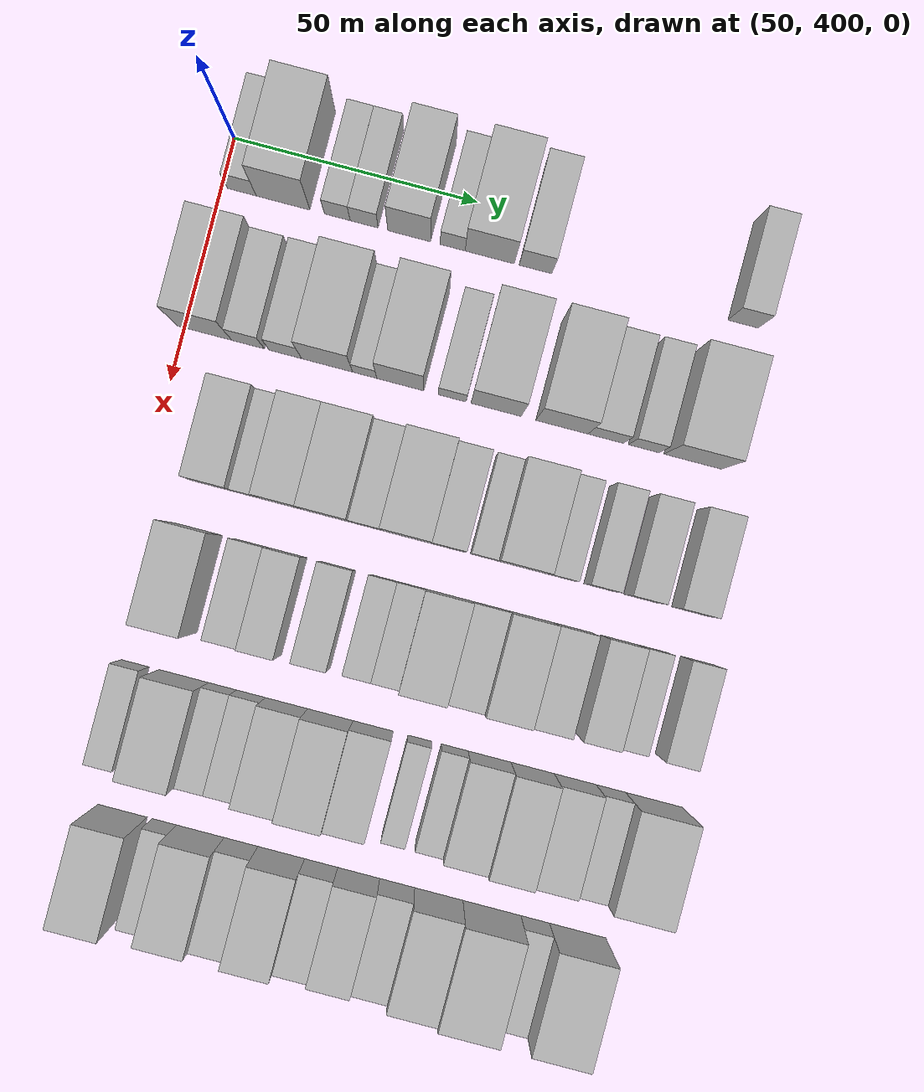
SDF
<sdf version="1.6">
 <world name="default">
  <model name="building_97">
   <static>1</static>
   <pose>50.0000 404.2038 0 0.000000 0.000000 0.000000</pose>
   <link name="link">
    <pose>0 0 6.00 0 0 0</pose>
    <collision name="collision"><geometry><box><size>20.0000 5.8761 12.0000</size></box></geometry></collision>
    <visual name="visual">
     <cast_shadows>0</cast_shadows>
     <geometry><box><size>20.0000 5.8761 12.0000</size></box></geometry>
     <material>
      <script>
       <uri>model://HANNAS_wall/materials/scripts</uri>
       <uri>model://HANNAS_wall/materials/textures</uri>
       <name>vrc/HANNAS_wall</name>
      </script>
     </material>
    </visual>
   </link>
  </model>
  <model name="building_98">
   <static>1</static>
   <pose>50.0000 412.6439 0 0.000000 0.000000 0.000000</pose>
   <link name="link">
    <pose>0 0 12.00 0 0 0</pose>
    <collision name="collision"><geometry><box><size>20.0000 11.0041 24.0000</size></box></geometry></collision>
    <visual name="visual">
     <cast_shadows>0</cast_shadows>
     <geometry><box><size>20.0000 11.0041 24.0000</size></box></geometry>
     <material>
      <script>
       <uri>model://HANNAS_wall/materials/scripts</uri>
       <uri>model://HANNAS_wall/materials/textures</uri>
       <name>vrc/HANNAS_wall</name>
      </script>
     </material>
    </visual>
   </link>
  </model>
  <model name="building_99">
   <static>1</static>
   <pose>50.0000 423.7917 0 0.000000 0.000000 0.000000</pose>
   <link name="link">
    <pose>0 0 6.00 0 0 0</pose>
    <collision name="collision"><geometry><box><size>20.0000 5.2915 12.0000</size></box></geometry></collision>
    <visual name="visual">
     <cast_shadows>0</cast_shadows>
     <geometry><box><size>20.0000 5.2915 12.0000</size></box></geometry>
     <material>
      <script>
       <uri>model://HANNAS_wall/materials/scripts</uri>
       <uri>model://HANNAS_wall/materials/textures</uri>
       <name>vrc/HANNAS_wall</name>
      </script>
     </material>
    </visual>
   </link>
  </model>
  <model name="building_100">
   <static>1</static>
   <pose>50.0000 429.3058 0 0.000000 0.000000 0.000000</pose>
   <link name="link">
    <pose>0 0 6.00 0 0 0</pose>
    <collision name="collision"><geometry><box><size>20.0000 5.7365 12.0000</size></box></geometry></collision>
    <visual name="visual">
     <cast_shadows>0</cast_shadows>
     <geometry><box><size>20.0000 5.7365 12.0000</size></box></geometry>
     <material>
      <script>
       <uri>model://HANNAS_wall/materials/scripts</uri>
       <uri>model://HANNAS_wall/materials/textures</uri>
       <name>vrc/HANNAS_wall</name>
      </script>
     </material>
    </visual>
   </link>
  </model>
  <model name="building_101">
   <static>1</static>
   <pose>50.0000 438.5606 0 0.000000 0.000000 0.000000</pose>
   <link name="link">
    <pose>0 0 10.50 0 0 0</pose>
    <collision name="collision"><geometry><box><size>20.0000 8.7731 21.0000</size></box></geometry></collision>
    <visual name="visual">
     <cast_shadows>0</cast_shadows>
     <geometry><box><size>20.0000 8.7731 21.0000</size></box></geometry>
     <material>
      <script>
       <uri>model://HANNAS_wall/materials/scripts</uri>
       <uri>model://HANNAS_wall/materials/textures</uri>
       <name>vrc/HANNAS_wall</name>
      </script>
     </material>
    </visual>
   </link>
  </model>
  <model name="building_102">
   <static>1</static>
   <pose>50.0000 447.5078 0 0.000000 0.000000 0.000000</pose>
   <link name="link">
    <pose>0 0 6.00 0 0 0</pose>
    <collision name="collision"><geometry><box><size>20.0000 5.1212 12.0000</size></box></geometry></collision>
    <visual name="visual">
     <cast_shadows>0</cast_shadows>
     <geometry><box><size>20.0000 5.1212 12.0000</size></box></geometry>
     <material>
      <script>
       <uri>model://HANNAS_wall/materials/scripts</uri>
       <uri>model://HANNAS_wall/materials/textures</uri>
       <name>vrc/HANNAS_wall</name>
      </script>
     </material>
    </visual>
   </link>
  </model>
  <model name="building_103">
   <static>1</static>
   <pose>50.0000 455.1104 0 0.000000 0.000000 0.000000</pose>
   <link name="link">
    <pose>0 0 10.50 0 0 0</pose>
    <collision name="collision"><geometry><box><size>20.0000 10.0841 21.0000</size></box></geometry></collision>
    <visual name="visual">
     <cast_shadows>0</cast_shadows>
     <geometry><box><size>20.0000 10.0841 21.0000</size></box></geometry>
     <material>
      <script>
       <uri>model://HANNAS_wall/materials/scripts</uri>
       <uri>model://HANNAS_wall/materials/textures</uri>
       <name>vrc/HANNAS_wall</name>
      </script>
     </material>
    </visual>
   </link>
  </model>
  <model name="building_104">
   <static>1</static>
   <pose>50.0000 464.5043 0 0.000000 0.000000 0.000000</pose>
   <link name="link">
    <pose>0 0 7.50 0 0 0</pose>
    <collision name="collision"><geometry><box><size>20.0000 6.7036 15.0000</size></box></geometry></collision>
    <visual name="visual">
     <cast_shadows>0</cast_shadows>
     <geometry><box><size>20.0000 6.7036 15.0000</size></box></geometry>
     <material>
      <script>
       <uri>model://HANNAS_wall/materials/scripts</uri>
       <uri>model://HANNAS_wall/materials/textures</uri>
       <name>vrc/HANNAS_wall</name>
      </script>
     </material>
    </visual>
   </link>
  </model>
  <model name="building_105">
   <static>1</static>
   <pose>50.0000 507.2167 0 0.000000 0.000000 0.000000</pose>
   <link name="link">
    <pose>0 0 7.50 0 0 0</pose>
    <collision name="collision"><geometry><box><size>20.0000 6.2405 15.0000</size></box></geometry></collision>
    <visual name="visual">
     <cast_shadows>0</cast_shadows>
     <geometry><box><size>20.0000 6.2405 15.0000</size></box></geometry>
     <material>
      <script>
       <uri>model://HANNAS_wall/materials/scripts</uri>
       <uri>model://HANNAS_wall/materials/textures</uri>
       <name>vrc/HANNAS_wall</name>
      </script>
     </material>
    </visual>
   </link>
  </model>
  <model name="building_208">
   <static>1</static>
   <pose>79.0000 404.2080 0 0.000000 0.000000 0.000000</pose>
   <link name="link">
    <pose>0 0 12.00 0 0 0</pose>
    <collision name="collision"><geometry><box><size>20.0000 11.1796 24.0000</size></box></geometry></collision>
    <visual name="visual">
     <cast_shadows>0</cast_shadows>
     <geometry><box><size>20.0000 11.1796 24.0000</size></box></geometry>
     <material>
      <script>
       <uri>model://HANNAS_wall/materials/scripts</uri>
       <uri>model://HANNAS_wall/materials/textures</uri>
       <name>vrc/HANNAS_wall</name>
      </script>
     </material>
    </visual>
   </link>
  </model>
  <model name="building_209">
   <static>1</static>
   <pose>79.0000 413.1258 0 0.000000 0.000000 0.000000</pose>
   <link name="link">
    <pose>0 0 7.50 0 0 0</pose>
    <collision name="collision"><geometry><box><size>20.0000 6.6559 15.0000</size></box></geometry></collision>
    <visual name="visual">
     <cast_shadows>0</cast_shadows>
     <geometry><box><size>20.0000 6.6559 15.0000</size></box></geometry>
     <material>
      <script>
       <uri>model://HANNAS_wall/materials/scripts</uri>
       <uri>model://HANNAS_wall/materials/textures</uri>
       <name>vrc/HANNAS_wall</name>
      </script>
     </material>
    </visual>
   </link>
  </model>
  <model name="building_210">
   <static>1</static>
   <pose>79.0000 420.7905 0 0.000000 0.000000 0.000000</pose>
   <link name="link">
    <pose>0 0 7.50 0 0 0</pose>
    <collision name="collision"><geometry><box><size>20.0000 6.6735 15.0000</size></box></geometry></collision>
    <visual name="visual">
     <cast_shadows>0</cast_shadows>
     <geometry><box><size>20.0000 6.6735 15.0000</size></box></geometry>
     <material>
      <script>
       <uri>model://HANNAS_wall/materials/scripts</uri>
       <uri>model://HANNAS_wall/materials/textures</uri>
       <name>vrc/HANNAS_wall</name>
      </script>
     </material>
    </visual>
   </link>
  </model>
  <model name="building_211">
   <static>1</static>
   <pose>79.0000 429.3721 0 0.000000 0.000000 0.000000</pose>
   <link name="link">
    <pose>0 0 12.00 0 0 0</pose>
    <collision name="collision"><geometry><box><size>20.0000 10.4898 24.0000</size></box></geometry></collision>
    <visual name="visual">
     <cast_shadows>0</cast_shadows>
     <geometry><box><size>20.0000 10.4898 24.0000</size></box></geometry>
     <material>
      <script>
       <uri>model://HANNAS_wall/materials/scripts</uri>
       <uri>model://HANNAS_wall/materials/textures</uri>
       <name>vrc/HANNAS_wall</name>
      </script>
     </material>
    </visual>
   </link>
  </model>
  <model name="building_212">
   <static>1</static>
   <pose>79.0000 437.0932 0 0.000000 0.000000 0.000000</pose>
   <link name="link">
    <pose>0 0 6.00 0 0 0</pose>
    <collision name="collision"><geometry><box><size>20.0000 4.9523 12.0000</size></box></geometry></collision>
    <visual name="visual">
     <cast_shadows>0</cast_shadows>
     <geometry><box><size>20.0000 4.9523 12.0000</size></box></geometry>
     <material>
      <script>
       <uri>model://HANNAS_wall/materials/scripts</uri>
       <uri>model://HANNAS_wall/materials/textures</uri>
       <name>vrc/HANNAS_wall</name>
      </script>
     </material>
    </visual>
   </link>
  </model>
  <model name="building_213">
   <static>1</static>
   <pose>79.0000 444.3851 0 0.000000 0.000000 0.000000</pose>
   <link name="link">
    <pose>0 0 12.00 0 0 0</pose>
    <collision name="collision"><geometry><box><size>20.0000 9.6316 24.0000</size></box></geometry></collision>
    <visual name="visual">
     <cast_shadows>0</cast_shadows>
     <geometry><box><size>20.0000 9.6316 24.0000</size></box></geometry>
     <material>
      <script>
       <uri>model://HANNAS_wall/materials/scripts</uri>
       <uri>model://HANNAS_wall/materials/textures</uri>
       <name>vrc/HANNAS_wall</name>
      </script>
     </material>
    </visual>
   </link>
  </model>
  <model name="building_214">
   <static>1</static>
   <pose>79.0000 455.0488 0 0.000000 0.000000 0.000000</pose>
   <link name="link">
    <pose>0 0 6.00 0 0 0</pose>
    <collision name="collision"><geometry><box><size>20.0000 5.6956 12.0000</size></box></geometry></collision>
    <visual name="visual">
     <cast_shadows>0</cast_shadows>
     <geometry><box><size>20.0000 5.6956 12.0000</size></box></geometry>
     <material>
      <script>
       <uri>model://HANNAS_wall/materials/scripts</uri>
       <uri>model://HANNAS_wall/materials/textures</uri>
       <name>vrc/HANNAS_wall</name>
      </script>
     </material>
    </visual>
   </link>
  </model>
  <model name="building_215">
   <static>1</static>
   <pose>79.0000 464.0540 0 0.000000 0.000000 0.000000</pose>
   <link name="link">
    <pose>0 0 12.00 0 0 0</pose>
    <collision name="collision"><geometry><box><size>20.0000 10.3149 24.0000</size></box></geometry></collision>
    <visual name="visual">
     <cast_shadows>0</cast_shadows>
     <geometry><box><size>20.0000 10.3149 24.0000</size></box></geometry>
     <material>
      <script>
       <uri>model://HANNAS_wall/materials/scripts</uri>
       <uri>model://HANNAS_wall/materials/textures</uri>
       <name>vrc/HANNAS_wall</name>
      </script>
     </material>
    </visual>
   </link>
  </model>
  <model name="building_216">
   <static>1</static>
   <pose>79.0000 477.5877 0 0.000000 0.000000 0.000000</pose>
   <link name="link">
    <pose>0 0 12.00 0 0 0</pose>
    <collision name="collision"><geometry><box><size>20.0000 10.7525 24.0000</size></box></geometry></collision>
    <visual name="visual">
     <cast_shadows>0</cast_shadows>
     <geometry><box><size>20.0000 10.7525 24.0000</size></box></geometry>
     <material>
      <script>
       <uri>model://HANNAS_wall/materials/scripts</uri>
       <uri>model://HANNAS_wall/materials/textures</uri>
       <name>vrc/HANNAS_wall</name>
      </script>
     </material>
    </visual>
   </link>
  </model>
  <model name="building_217">
   <static>1</static>
   <pose>79.0000 486.6097 0 0.000000 0.000000 0.000000</pose>
   <link name="link">
    <pose>0 0 7.50 0 0 0</pose>
    <collision name="collision"><geometry><box><size>20.0000 7.2914 15.0000</size></box></geometry></collision>
    <visual name="visual">
     <cast_shadows>0</cast_shadows>
     <geometry><box><size>20.0000 7.2914 15.0000</size></box></geometry>
     <material>
      <script>
       <uri>model://HANNAS_wall/materials/scripts</uri>
       <uri>model://HANNAS_wall/materials/textures</uri>
       <name>vrc/HANNAS_wall</name>
      </script>
     </material>
    </visual>
   </link>
  </model>
  <model name="building_218">
   <static>1</static>
   <pose>79.0000 494.3957 0 0.000000 0.000000 0.000000</pose>
   <link name="link">
    <pose>0 0 7.50 0 0 0</pose>
    <collision name="collision"><geometry><box><size>20.0000 6.2807 15.0000</size></box></geometry></collision>
    <visual name="visual">
     <cast_shadows>0</cast_shadows>
     <geometry><box><size>20.0000 6.2807 15.0000</size></box></geometry>
     <material>
      <script>
       <uri>model://HANNAS_wall/materials/scripts</uri>
       <uri>model://HANNAS_wall/materials/textures</uri>
       <name>vrc/HANNAS_wall</name>
      </script>
     </material>
    </visual>
   </link>
  </model>
  <model name="building_219">
   <static>1</static>
   <pose>79.0000 504.4494 0 0.000000 0.000000 0.000000</pose>
   <link name="link">
    <pose>0 0 12.00 0 0 0</pose>
    <collision name="collision"><geometry><box><size>20.0000 11.8266 24.0000</size></box></geometry></collision>
    <visual name="visual">
     <cast_shadows>0</cast_shadows>
     <geometry><box><size>20.0000 11.8266 24.0000</size></box></geometry>
     <material>
      <script>
       <uri>model://HANNAS_wall/materials/scripts</uri>
       <uri>model://HANNAS_wall/materials/textures</uri>
       <name>vrc/HANNAS_wall</name>
      </script>
     </material>
    </visual>
   </link>
  </model>
  <model name="building_323">
   <static>1</static>
   <pose>108.0000 413.7590 0 0.000000 0.000000 0.000000</pose>
   <link name="link">
    <pose>0 0 9.00 0 0 0</pose>
    <collision name="collision"><geometry><box><size>20.0000 8.7634 18.0000</size></box></geometry></collision>
    <visual name="visual">
     <cast_shadows>0</cast_shadows>
     <geometry><box><size>20.0000 8.7634 18.0000</size></box></geometry>
     <material>
      <script>
       <uri>model://HANNAS_wall/materials/scripts</uri>
       <uri>model://HANNAS_wall/materials/textures</uri>
       <name>vrc/HANNAS_wall</name>
      </script>
     </material>
    </visual>
   </link>
  </model>
  <model name="building_324">
   <static>1</static>
   <pose>108.0000 420.7396 0 0.000000 0.000000 0.000000</pose>
   <link name="link">
    <pose>0 0 6.00 0 0 0</pose>
    <collision name="collision"><geometry><box><size>20.0000 5.1978 12.0000</size></box></geometry></collision>
    <visual name="visual">
     <cast_shadows>0</cast_shadows>
     <geometry><box><size>20.0000 5.1978 12.0000</size></box></geometry>
     <material>
      <script>
       <uri>model://HANNAS_wall/materials/scripts</uri>
       <uri>model://HANNAS_wall/materials/textures</uri>
       <name>vrc/HANNAS_wall</name>
      </script>
     </material>
    </visual>
   </link>
  </model>
  <model name="building_325">
   <static>1</static>
   <pose>108.0000 427.6355 0 0.000000 0.000000 0.000000</pose>
   <link name="link">
    <pose>0 0 10.50 0 0 0</pose>
    <collision name="collision"><geometry><box><size>20.0000 8.5941 21.0000</size></box></geometry></collision>
    <visual name="visual">
     <cast_shadows>0</cast_shadows>
     <geometry><box><size>20.0000 8.5941 21.0000</size></box></geometry>
     <material>
      <script>
       <uri>model://HANNAS_wall/materials/scripts</uri>
       <uri>model://HANNAS_wall/materials/textures</uri>
       <name>vrc/HANNAS_wall</name>
      </script>
     </material>
    </visual>
   </link>
  </model>
  <model name="building_326">
   <static>1</static>
   <pose>108.0000 436.9105 0 0.000000 0.000000 0.000000</pose>
   <link name="link">
    <pose>0 0 10.50 0 0 0</pose>
    <collision name="collision"><geometry><box><size>20.0000 9.9557 21.0000</size></box></geometry></collision>
    <visual name="visual">
     <cast_shadows>0</cast_shadows>
     <geometry><box><size>20.0000 9.9557 21.0000</size></box></geometry>
     <material>
      <script>
       <uri>model://HANNAS_wall/materials/scripts</uri>
       <uri>model://HANNAS_wall/materials/textures</uri>
       <name>vrc/HANNAS_wall</name>
      </script>
     </material>
    </visual>
   </link>
  </model>
  <model name="building_327">
   <static>1</static>
   <pose>108.0000 445.0943 0 0.000000 0.000000 0.000000</pose>
   <link name="link">
    <pose>0 0 7.50 0 0 0</pose>
    <collision name="collision"><geometry><box><size>20.0000 6.4119 15.0000</size></box></geometry></collision>
    <visual name="visual">
     <cast_shadows>0</cast_shadows>
     <geometry><box><size>20.0000 6.4119 15.0000</size></box></geometry>
     <material>
      <script>
       <uri>model://HANNAS_wall/materials/scripts</uri>
       <uri>model://HANNAS_wall/materials/textures</uri>
       <name>vrc/HANNAS_wall</name>
      </script>
     </material>
    </visual>
   </link>
  </model>
  <model name="building_328">
   <static>1</static>
   <pose>108.0000 453.4005 0 0.000000 0.000000 0.000000</pose>
   <link name="link">
    <pose>0 0 10.50 0 0 0</pose>
    <collision name="collision"><geometry><box><size>20.0000 10.2006 21.0000</size></box></geometry></collision>
    <visual name="visual">
     <cast_shadows>0</cast_shadows>
     <geometry><box><size>20.0000 10.2006 21.0000</size></box></geometry>
     <material>
      <script>
       <uri>model://HANNAS_wall/materials/scripts</uri>
       <uri>model://HANNAS_wall/materials/textures</uri>
       <name>vrc/HANNAS_wall</name>
      </script>
     </material>
    </visual>
   </link>
  </model>
  <model name="building_329">
   <static>1</static>
   <pose>108.0000 461.9389 0 0.000000 0.000000 0.000000</pose>
   <link name="link">
    <pose>0 0 7.50 0 0 0</pose>
    <collision name="collision"><geometry><box><size>20.0000 6.8762 15.0000</size></box></geometry></collision>
    <visual name="visual">
     <cast_shadows>0</cast_shadows>
     <geometry><box><size>20.0000 6.8762 15.0000</size></box></geometry>
     <material>
      <script>
       <uri>model://HANNAS_wall/materials/scripts</uri>
       <uri>model://HANNAS_wall/materials/textures</uri>
       <name>vrc/HANNAS_wall</name>
      </script>
     </material>
    </visual>
   </link>
  </model>
  <model name="building_330">
   <static>1</static>
   <pose>108.0000 469.0726 0 0.000000 0.000000 0.000000</pose>
   <link name="link">
    <pose>0 0 6.00 0 0 0</pose>
    <collision name="collision"><geometry><box><size>20.0000 5.3910 12.0000</size></box></geometry></collision>
    <visual name="visual">
     <cast_shadows>0</cast_shadows>
     <geometry><box><size>20.0000 5.3910 12.0000</size></box></geometry>
     <material>
      <script>
       <uri>model://HANNAS_wall/materials/scripts</uri>
       <uri>model://HANNAS_wall/materials/textures</uri>
       <name>vrc/HANNAS_wall</name>
      </script>
     </material>
    </visual>
   </link>
  </model>
  <model name="building_331">
   <static>1</static>
   <pose>108.0000 476.8508 0 0.000000 0.000000 0.000000</pose>
   <link name="link">
    <pose>0 0 10.50 0 0 0</pose>
    <collision name="collision"><geometry><box><size>20.0000 10.1655 21.0000</size></box></geometry></collision>
    <visual name="visual">
     <cast_shadows>0</cast_shadows>
     <geometry><box><size>20.0000 10.1655 21.0000</size></box></geometry>
     <material>
      <script>
       <uri>model://HANNAS_wall/materials/scripts</uri>
       <uri>model://HANNAS_wall/materials/textures</uri>
       <name>vrc/HANNAS_wall</name>
      </script>
     </material>
    </visual>
   </link>
  </model>
  <model name="building_332">
   <static>1</static>
   <pose>108.0000 484.8225 0 0.000000 0.000000 0.000000</pose>
   <link name="link">
    <pose>0 0 6.00 0 0 0</pose>
    <collision name="collision"><geometry><box><size>20.0000 5.7780 12.0000</size></box></geometry></collision>
    <visual name="visual">
     <cast_shadows>0</cast_shadows>
     <geometry><box><size>20.0000 5.7780 12.0000</size></box></geometry>
     <material>
      <script>
       <uri>model://HANNAS_wall/materials/scripts</uri>
       <uri>model://HANNAS_wall/materials/textures</uri>
       <name>vrc/HANNAS_wall</name>
      </script>
     </material>
    </visual>
   </link>
  </model>
  <model name="building_333">
   <static>1</static>
   <pose>108.0000 492.8255 0 0.000000 0.000000 0.000000</pose>
   <link name="link">
    <pose>0 0 7.50 0 0 0</pose>
    <collision name="collision"><geometry><box><size>20.0000 6.2280 15.0000</size></box></geometry></collision>
    <visual name="visual">
     <cast_shadows>0</cast_shadows>
     <geometry><box><size>20.0000 6.2280 15.0000</size></box></geometry>
     <material>
      <script>
       <uri>model://HANNAS_wall/materials/scripts</uri>
       <uri>model://HANNAS_wall/materials/textures</uri>
       <name>vrc/HANNAS_wall</name>
      </script>
     </material>
    </visual>
   </link>
  </model>
  <model name="building_334">
   <static>1</static>
   <pose>108.0000 501.3428 0 0.000000 0.000000 0.000000</pose>
   <link name="link">
    <pose>0 0 7.50 0 0 0</pose>
    <collision name="collision"><geometry><box><size>20.0000 6.8065 15.0000</size></box></geometry></collision>
    <visual name="visual">
     <cast_shadows>0</cast_shadows>
     <geometry><box><size>20.0000 6.8065 15.0000</size></box></geometry>
     <material>
      <script>
       <uri>model://HANNAS_wall/materials/scripts</uri>
       <uri>model://HANNAS_wall/materials/textures</uri>
       <name>vrc/HANNAS_wall</name>
      </script>
     </material>
    </visual>
   </link>
  </model>
  <model name="building_335">
   <static>1</static>
   <pose>108.0000 511.4483 0 0.000000 0.000000 0.000000</pose>
   <link name="link">
    <pose>0 0 7.50 0 0 0</pose>
    <collision name="collision"><geometry><box><size>20.0000 7.4046 15.0000</size></box></geometry></collision>
    <visual name="visual">
     <cast_shadows>0</cast_shadows>
     <geometry><box><size>20.0000 7.4046 15.0000</size></box></geometry>
     <material>
      <script>
       <uri>model://HANNAS_wall/materials/scripts</uri>
       <uri>model://HANNAS_wall/materials/textures</uri>
       <name>vrc/HANNAS_wall</name>
      </script>
     </material>
    </visual>
   </link>
  </model>
  <model name="building_433">
   <static>1</static>
   <pose>137.0000 412.9341 0 0.000000 0.000000 0.000000</pose>
   <link name="link">
    <pose>0 0 12.00 0 0 0</pose>
    <collision name="collision"><geometry><box><size>20.0000 9.8700 24.0000</size></box></geometry></collision>
    <visual name="visual">
     <cast_shadows>0</cast_shadows>
     <geometry><box><size>20.0000 9.8700 24.0000</size></box></geometry>
     <material>
      <script>
       <uri>model://HANNAS_wall/materials/scripts</uri>
       <uri>model://HANNAS_wall/materials/textures</uri>
       <name>vrc/HANNAS_wall</name>
      </script>
     </material>
    </visual>
   </link>
  </model>
  <model name="building_434">
   <static>1</static>
   <pose>137.0000 424.4088 0 0.000000 0.000000 0.000000</pose>
   <link name="link">
    <pose>0 0 7.50 0 0 0</pose>
    <collision name="collision"><geometry><box><size>20.0000 7.0794 15.0000</size></box></geometry></collision>
    <visual name="visual">
     <cast_shadows>0</cast_shadows>
     <geometry><box><size>20.0000 7.0794 15.0000</size></box></geometry>
     <material>
      <script>
       <uri>model://HANNAS_wall/materials/scripts</uri>
       <uri>model://HANNAS_wall/materials/textures</uri>
       <name>vrc/HANNAS_wall</name>
      </script>
     </material>
    </visual>
   </link>
  </model>
  <model name="building_435">
   <static>1</static>
   <pose>137.0000 431.5953 0 0.000000 0.000000 0.000000</pose>
   <link name="link">
    <pose>0 0 9.00 0 0 0</pose>
    <collision name="collision"><geometry><box><size>20.0000 7.2936 18.0000</size></box></geometry></collision>
    <visual name="visual">
     <cast_shadows>0</cast_shadows>
     <geometry><box><size>20.0000 7.2936 18.0000</size></box></geometry>
     <material>
      <script>
       <uri>model://HANNAS_wall/materials/scripts</uri>
       <uri>model://HANNAS_wall/materials/textures</uri>
       <name>vrc/HANNAS_wall</name>
      </script>
     </material>
    </visual>
   </link>
  </model>
  <model name="building_436">
   <static>1</static>
   <pose>137.0000 441.7615 0 0.000000 0.000000 0.000000</pose>
   <link name="link">
    <pose>0 0 7.50 0 0 0</pose>
    <collision name="collision"><geometry><box><size>20.0000 7.0388 15.0000</size></box></geometry></collision>
    <visual name="visual">
     <cast_shadows>0</cast_shadows>
     <geometry><box><size>20.0000 7.0388 15.0000</size></box></geometry>
     <material>
      <script>
       <uri>model://HANNAS_wall/materials/scripts</uri>
       <uri>model://HANNAS_wall/materials/textures</uri>
       <name>vrc/HANNAS_wall</name>
      </script>
     </material>
    </visual>
   </link>
  </model>
  <model name="building_437">
   <static>1</static>
   <pose>137.0000 451.1356 0 0.000000 0.000000 0.000000</pose>
   <link name="link">
    <pose>0 0 6.00 0 0 0</pose>
    <collision name="collision"><geometry><box><size>20.0000 5.7093 12.0000</size></box></geometry></collision>
    <visual name="visual">
     <cast_shadows>0</cast_shadows>
     <geometry><box><size>20.0000 5.7093 12.0000</size></box></geometry>
     <material>
      <script>
       <uri>model://HANNAS_wall/materials/scripts</uri>
       <uri>model://HANNAS_wall/materials/textures</uri>
       <name>vrc/HANNAS_wall</name>
      </script>
     </material>
    </visual>
   </link>
  </model>
  <model name="building_438">
   <static>1</static>
   <pose>137.0000 456.8196 0 0.000000 0.000000 0.000000</pose>
   <link name="link">
    <pose>0 0 6.00 0 0 0</pose>
    <collision name="collision"><geometry><box><size>20.0000 5.6586 12.0000</size></box></geometry></collision>
    <visual name="visual">
     <cast_shadows>0</cast_shadows>
     <geometry><box><size>20.0000 5.6586 12.0000</size></box></geometry>
     <material>
      <script>
       <uri>model://HANNAS_wall/materials/scripts</uri>
       <uri>model://HANNAS_wall/materials/textures</uri>
       <name>vrc/HANNAS_wall</name>
      </script>
     </material>
    </visual>
   </link>
  </model>
  <model name="building_439">
   <static>1</static>
   <pose>137.0000 464.3732 0 0.000000 0.000000 0.000000</pose>
   <link name="link">
    <pose>0 0 10.50 0 0 0</pose>
    <collision name="collision"><geometry><box><size>20.0000 9.4486 21.0000</size></box></geometry></collision>
    <visual name="visual">
     <cast_shadows>0</cast_shadows>
     <geometry><box><size>20.0000 9.4486 21.0000</size></box></geometry>
     <material>
      <script>
       <uri>model://HANNAS_wall/materials/scripts</uri>
       <uri>model://HANNAS_wall/materials/textures</uri>
       <name>vrc/HANNAS_wall</name>
      </script>
     </material>
    </visual>
   </link>
  </model>
  <model name="building_440">
   <static>1</static>
   <pose>137.0000 472.8029 0 0.000000 0.000000 0.000000</pose>
   <link name="link">
    <pose>0 0 7.50 0 0 0</pose>
    <collision name="collision"><geometry><box><size>20.0000 7.4107 15.0000</size></box></geometry></collision>
    <visual name="visual">
     <cast_shadows>0</cast_shadows>
     <geometry><box><size>20.0000 7.4107 15.0000</size></box></geometry>
     <material>
      <script>
       <uri>model://HANNAS_wall/materials/scripts</uri>
       <uri>model://HANNAS_wall/materials/textures</uri>
       <name>vrc/HANNAS_wall</name>
      </script>
     </material>
    </visual>
   </link>
  </model>
  <model name="building_441">
   <static>1</static>
   <pose>137.0000 481.0805 0 0.000000 0.000000 0.000000</pose>
   <link name="link">
    <pose>0 0 10.50 0 0 0</pose>
    <collision name="collision"><geometry><box><size>20.0000 9.1446 21.0000</size></box></geometry></collision>
    <visual name="visual">
     <cast_shadows>0</cast_shadows>
     <geometry><box><size>20.0000 9.1446 21.0000</size></box></geometry>
     <material>
      <script>
       <uri>model://HANNAS_wall/materials/scripts</uri>
       <uri>model://HANNAS_wall/materials/textures</uri>
       <name>vrc/HANNAS_wall</name>
      </script>
     </material>
    </visual>
   </link>
  </model>
  <model name="building_442">
   <static>1</static>
   <pose>137.0000 489.5961 0 0.000000 0.000000 0.000000</pose>
   <link name="link">
    <pose>0 0 9.00 0 0 0</pose>
    <collision name="collision"><geometry><box><size>20.0000 7.8866 18.0000</size></box></geometry></collision>
    <visual name="visual">
     <cast_shadows>0</cast_shadows>
     <geometry><box><size>20.0000 7.8866 18.0000</size></box></geometry>
     <material>
      <script>
       <uri>model://HANNAS_wall/materials/scripts</uri>
       <uri>model://HANNAS_wall/materials/textures</uri>
       <name>vrc/HANNAS_wall</name>
      </script>
     </material>
    </visual>
   </link>
  </model>
  <model name="building_443">
   <static>1</static>
   <pose>137.0000 499.2934 0 0.000000 0.000000 0.000000</pose>
   <link name="link">
    <pose>0 0 9.00 0 0 0</pose>
    <collision name="collision"><geometry><box><size>20.0000 7.5081 18.0000</size></box></geometry></collision>
    <visual name="visual">
     <cast_shadows>0</cast_shadows>
     <geometry><box><size>20.0000 7.5081 18.0000</size></box></geometry>
     <material>
      <script>
       <uri>model://HANNAS_wall/materials/scripts</uri>
       <uri>model://HANNAS_wall/materials/textures</uri>
       <name>vrc/HANNAS_wall</name>
      </script>
     </material>
    </visual>
   </link>
  </model>
  <model name="building_444">
   <static>1</static>
   <pose>137.0000 506.0329 0 0.000000 0.000000 0.000000</pose>
   <link name="link">
    <pose>0 0 6.00 0 0 0</pose>
    <collision name="collision"><geometry><box><size>20.0000 5.9707 12.0000</size></box></geometry></collision>
    <visual name="visual">
     <cast_shadows>0</cast_shadows>
     <geometry><box><size>20.0000 5.9707 12.0000</size></box></geometry>
     <material>
      <script>
       <uri>model://HANNAS_wall/materials/scripts</uri>
       <uri>model://HANNAS_wall/materials/textures</uri>
       <name>vrc/HANNAS_wall</name>
      </script>
     </material>
    </visual>
   </link>
  </model>
  <model name="building_445">
   <static>1</static>
   <pose>137.0000 515.3078 0 0.000000 0.000000 0.000000</pose>
   <link name="link">
    <pose>0 0 7.50 0 0 0</pose>
    <collision name="collision"><geometry><box><size>20.0000 6.5791 15.0000</size></box></geometry></collision>
    <visual name="visual">
     <cast_shadows>0</cast_shadows>
     <geometry><box><size>20.0000 6.5791 15.0000</size></box></geometry>
     <material>
      <script>
       <uri>model://HANNAS_wall/materials/scripts</uri>
       <uri>model://HANNAS_wall/materials/textures</uri>
       <name>vrc/HANNAS_wall</name>
      </script>
     </material>
    </visual>
   </link>
  </model>
  <model name="building_547">
   <static>1</static>
   <pose>166.0000 407.5630 0 0.000000 0.000000 0.000000</pose>
   <link name="link">
    <pose>0 0 6.00 0 0 0</pose>
    <collision name="collision"><geometry><box><size>20.0000 5.7553 12.0000</size></box></geometry></collision>
    <visual name="visual">
     <cast_shadows>0</cast_shadows>
     <geometry><box><size>20.0000 5.7553 12.0000</size></box></geometry>
     <material>
      <script>
       <uri>model://HANNAS_wall/materials/scripts</uri>
       <uri>model://HANNAS_wall/materials/textures</uri>
       <name>vrc/HANNAS_wall</name>
      </script>
     </material>
    </visual>
   </link>
  </model>
  <model name="building_548">
   <static>1</static>
   <pose>166.0000 417.5642 0 0.000000 0.000000 0.000000</pose>
   <link name="link">
    <pose>0 0 10.50 0 0 0</pose>
    <collision name="collision"><geometry><box><size>20.0000 10.2472 21.0000</size></box></geometry></collision>
    <visual name="visual">
     <cast_shadows>0</cast_shadows>
     <geometry><box><size>20.0000 10.2472 21.0000</size></box></geometry>
     <material>
      <script>
       <uri>model://HANNAS_wall/materials/scripts</uri>
       <uri>model://HANNAS_wall/materials/textures</uri>
       <name>vrc/HANNAS_wall</name>
      </script>
     </material>
    </visual>
   </link>
  </model>
  <model name="building_549">
   <static>1</static>
   <pose>166.0000 425.5363 0 0.000000 0.000000 0.000000</pose>
   <link name="link">
    <pose>0 0 6.00 0 0 0</pose>
    <collision name="collision"><geometry><box><size>20.0000 5.6970 12.0000</size></box></geometry></collision>
    <visual name="visual">
     <cast_shadows>0</cast_shadows>
     <geometry><box><size>20.0000 5.6970 12.0000</size></box></geometry>
     <material>
      <script>
       <uri>model://HANNAS_wall/materials/scripts</uri>
       <uri>model://HANNAS_wall/materials/textures</uri>
       <name>vrc/HANNAS_wall</name>
      </script>
     </material>
    </visual>
   </link>
  </model>
  <model name="building_550">
   <static>1</static>
   <pose>166.0000 431.3678 0 0.000000 0.000000 0.000000</pose>
   <link name="link">
    <pose>0 0 6.00 0 0 0</pose>
    <collision name="collision"><geometry><box><size>20.0000 5.9660 12.0000</size></box></geometry></collision>
    <visual name="visual">
     <cast_shadows>0</cast_shadows>
     <geometry><box><size>20.0000 5.9660 12.0000</size></box></geometry>
     <material>
      <script>
       <uri>model://HANNAS_wall/materials/scripts</uri>
       <uri>model://HANNAS_wall/materials/textures</uri>
       <name>vrc/HANNAS_wall</name>
      </script>
     </material>
    </visual>
   </link>
  </model>
  <model name="building_551">
   <static>1</static>
   <pose>166.0000 438.6874 0 0.000000 0.000000 0.000000</pose>
   <link name="link">
    <pose>0 0 9.00 0 0 0</pose>
    <collision name="collision"><geometry><box><size>20.0000 8.6730 18.0000</size></box></geometry></collision>
    <visual name="visual">
     <cast_shadows>0</cast_shadows>
     <geometry><box><size>20.0000 8.6730 18.0000</size></box></geometry>
     <material>
      <script>
       <uri>model://HANNAS_wall/materials/scripts</uri>
       <uri>model://HANNAS_wall/materials/textures</uri>
       <name>vrc/HANNAS_wall</name>
      </script>
     </material>
    </visual>
   </link>
  </model>
  <model name="building_552">
   <static>1</static>
   <pose>166.0000 447.6731 0 0.000000 0.000000 0.000000</pose>
   <link name="link">
    <pose>0 0 10.50 0 0 0</pose>
    <collision name="collision"><geometry><box><size>20.0000 9.2985 21.0000</size></box></geometry></collision>
    <visual name="visual">
     <cast_shadows>0</cast_shadows>
     <geometry><box><size>20.0000 9.2985 21.0000</size></box></geometry>
     <material>
      <script>
       <uri>model://HANNAS_wall/materials/scripts</uri>
       <uri>model://HANNAS_wall/materials/textures</uri>
       <name>vrc/HANNAS_wall</name>
      </script>
     </material>
    </visual>
   </link>
  </model>
  <model name="building_553">
   <static>1</static>
   <pose>166.0000 456.4592 0 0.000000 0.000000 0.000000</pose>
   <link name="link">
    <pose>0 0 9.00 0 0 0</pose>
    <collision name="collision"><geometry><box><size>20.0000 8.2737 18.0000</size></box></geometry></collision>
    <visual name="visual">
     <cast_shadows>0</cast_shadows>
     <geometry><box><size>20.0000 8.2737 18.0000</size></box></geometry>
     <material>
      <script>
       <uri>model://HANNAS_wall/materials/scripts</uri>
       <uri>model://HANNAS_wall/materials/textures</uri>
       <name>vrc/HANNAS_wall</name>
      </script>
     </material>
    </visual>
   </link>
  </model>
  <model name="building_554">
   <static>1</static>
   <pose>166.0000 466.0096 0 0.000000 0.000000 0.000000</pose>
   <link name="link">
    <pose>0 0 6.00 0 0 0</pose>
    <collision name="collision"><geometry><box><size>20.0000 4.8273 12.0000</size></box></geometry></collision>
    <visual name="visual">
     <cast_shadows>0</cast_shadows>
     <geometry><box><size>20.0000 4.8273 12.0000</size></box></geometry>
     <material>
      <script>
       <uri>model://HANNAS_wall/materials/scripts</uri>
       <uri>model://HANNAS_wall/materials/textures</uri>
       <name>vrc/HANNAS_wall</name>
      </script>
     </material>
    </visual>
   </link>
  </model>
  <model name="building_555">
   <static>1</static>
   <pose>166.0000 473.1869 0 0.000000 0.000000 0.000000</pose>
   <link name="link">
    <pose>0 0 6.00 0 0 0</pose>
    <collision name="collision"><geometry><box><size>20.0000 5.5272 12.0000</size></box></geometry></collision>
    <visual name="visual">
     <cast_shadows>0</cast_shadows>
     <geometry><box><size>20.0000 5.5272 12.0000</size></box></geometry>
     <material>
      <script>
       <uri>model://HANNAS_wall/materials/scripts</uri>
       <uri>model://HANNAS_wall/materials/textures</uri>
       <name>vrc/HANNAS_wall</name>
      </script>
     </material>
    </visual>
   </link>
  </model>
  <model name="building_556">
   <static>1</static>
   <pose>166.0000 480.3368 0 0.000000 0.000000 0.000000</pose>
   <link name="link">
    <pose>0 0 9.00 0 0 0</pose>
    <collision name="collision"><geometry><box><size>20.0000 8.7728 18.0000</size></box></geometry></collision>
    <visual name="visual">
     <cast_shadows>0</cast_shadows>
     <geometry><box><size>20.0000 8.7728 18.0000</size></box></geometry>
     <material>
      <script>
       <uri>model://HANNAS_wall/materials/scripts</uri>
       <uri>model://HANNAS_wall/materials/textures</uri>
       <name>vrc/HANNAS_wall</name>
      </script>
     </material>
    </visual>
   </link>
  </model>
  <model name="building_557">
   <static>1</static>
   <pose>166.0000 489.1704 0 0.000000 0.000000 0.000000</pose>
   <link name="link">
    <pose>0 0 10.50 0 0 0</pose>
    <collision name="collision"><geometry><box><size>20.0000 8.8943 21.0000</size></box></geometry></collision>
    <visual name="visual">
     <cast_shadows>0</cast_shadows>
     <geometry><box><size>20.0000 8.8943 21.0000</size></box></geometry>
     <material>
      <script>
       <uri>model://HANNAS_wall/materials/scripts</uri>
       <uri>model://HANNAS_wall/materials/textures</uri>
       <name>vrc/HANNAS_wall</name>
      </script>
     </material>
    </visual>
   </link>
  </model>
  <model name="building_558">
   <static>1</static>
   <pose>166.0000 497.9422 0 0.000000 0.000000 0.000000</pose>
   <link name="link">
    <pose>0 0 9.00 0 0 0</pose>
    <collision name="collision"><geometry><box><size>20.0000 8.6494 18.0000</size></box></geometry></collision>
    <visual name="visual">
     <cast_shadows>0</cast_shadows>
     <geometry><box><size>20.0000 8.6494 18.0000</size></box></geometry>
     <material>
      <script>
       <uri>model://HANNAS_wall/materials/scripts</uri>
       <uri>model://HANNAS_wall/materials/textures</uri>
       <name>vrc/HANNAS_wall</name>
      </script>
     </material>
    </visual>
   </link>
  </model>
  <model name="building_559">
   <static>1</static>
   <pose>166.0000 505.2714 0 0.000000 0.000000 0.000000</pose>
   <link name="link">
    <pose>0 0 7.50 0 0 0</pose>
    <collision name="collision"><geometry><box><size>20.0000 6.0090 15.0000</size></box></geometry></collision>
    <visual name="visual">
     <cast_shadows>0</cast_shadows>
     <geometry><box><size>20.0000 6.0090 15.0000</size></box></geometry>
     <material>
      <script>
       <uri>model://HANNAS_wall/materials/scripts</uri>
       <uri>model://HANNAS_wall/materials/textures</uri>
       <name>vrc/HANNAS_wall</name>
      </script>
     </material>
    </visual>
   </link>
  </model>
  <model name="building_560">
   <static>1</static>
   <pose>166.0000 514.1322 0 0.000000 0.000000 0.000000</pose>
   <link name="link">
    <pose>0 0 12.00 0 0 0</pose>
    <collision name="collision"><geometry><box><size>20.0000 11.7125 24.0000</size></box></geometry></collision>
    <visual name="visual">
     <cast_shadows>0</cast_shadows>
     <geometry><box><size>20.0000 11.7125 24.0000</size></box></geometry>
     <material>
      <script>
       <uri>model://HANNAS_wall/materials/scripts</uri>
       <uri>model://HANNAS_wall/materials/textures</uri>
       <name>vrc/HANNAS_wall</name>
      </script>
     </material>
    </visual>
   </link>
  </model>
  <model name="building_650">
   <static>1</static>
   <pose>195.0000 412.6139 0 0.000000 0.000000 0.000000</pose>
   <link name="link">
    <pose>0 0 12.00 0 0 0</pose>
    <collision name="collision"><geometry><box><size>20.0000 10.1193 24.0000</size></box></geometry></collision>
    <visual name="visual">
     <cast_shadows>0</cast_shadows>
     <geometry><box><size>20.0000 10.1193 24.0000</size></box></geometry>
     <material>
      <script>
       <uri>model://HANNAS_wall/materials/scripts</uri>
       <uri>model://HANNAS_wall/materials/textures</uri>
       <name>vrc/HANNAS_wall</name>
      </script>
     </material>
    </visual>
   </link>
  </model>
  <model name="building_651">
   <static>1</static>
   <pose>195.0000 421.1722 0 0.000000 0.000000 0.000000</pose>
   <link name="link">
    <pose>0 0 6.00 0 0 0</pose>
    <collision name="collision"><geometry><box><size>20.0000 4.9974 12.0000</size></box></geometry></collision>
    <visual name="visual">
     <cast_shadows>0</cast_shadows>
     <geometry><box><size>20.0000 4.9974 12.0000</size></box></geometry>
     <material>
      <script>
       <uri>model://HANNAS_wall/materials/scripts</uri>
       <uri>model://HANNAS_wall/materials/textures</uri>
       <name>vrc/HANNAS_wall</name>
      </script>
     </material>
    </visual>
   </link>
  </model>
  <model name="building_652">
   <static>1</static>
   <pose>195.0000 428.5781 0 0.000000 0.000000 0.000000</pose>
   <link name="link">
    <pose>0 0 10.50 0 0 0</pose>
    <collision name="collision"><geometry><box><size>20.0000 9.8142 21.0000</size></box></geometry></collision>
    <visual name="visual">
     <cast_shadows>0</cast_shadows>
     <geometry><box><size>20.0000 9.8142 21.0000</size></box></geometry>
     <material>
      <script>
       <uri>model://HANNAS_wall/materials/scripts</uri>
       <uri>model://HANNAS_wall/materials/textures</uri>
       <name>vrc/HANNAS_wall</name>
      </script>
     </material>
    </visual>
   </link>
  </model>
  <model name="building_653">
   <static>1</static>
   <pose>195.0000 436.9528 0 0.000000 0.000000 0.000000</pose>
   <link name="link">
    <pose>0 0 7.50 0 0 0</pose>
    <collision name="collision"><geometry><box><size>20.0000 6.9353 15.0000</size></box></geometry></collision>
    <visual name="visual">
     <cast_shadows>0</cast_shadows>
     <geometry><box><size>20.0000 6.9353 15.0000</size></box></geometry>
     <material>
      <script>
       <uri>model://HANNAS_wall/materials/scripts</uri>
       <uri>model://HANNAS_wall/materials/textures</uri>
       <name>vrc/HANNAS_wall</name>
      </script>
     </material>
    </visual>
   </link>
  </model>
  <model name="building_654">
   <static>1</static>
   <pose>195.0000 445.2150 0 0.000000 0.000000 0.000000</pose>
   <link name="link">
    <pose>0 0 10.50 0 0 0</pose>
    <collision name="collision"><geometry><box><size>20.0000 9.5891 21.0000</size></box></geometry></collision>
    <visual name="visual">
     <cast_shadows>0</cast_shadows>
     <geometry><box><size>20.0000 9.5891 21.0000</size></box></geometry>
     <material>
      <script>
       <uri>model://HANNAS_wall/materials/scripts</uri>
       <uri>model://HANNAS_wall/materials/textures</uri>
       <name>vrc/HANNAS_wall</name>
      </script>
     </material>
    </visual>
   </link>
  </model>
  <model name="building_655">
   <static>1</static>
   <pose>195.0000 453.4071 0 0.000000 0.000000 0.000000</pose>
   <link name="link">
    <pose>0 0 7.50 0 0 0</pose>
    <collision name="collision"><geometry><box><size>20.0000 6.7951 15.0000</size></box></geometry></collision>
    <visual name="visual">
     <cast_shadows>0</cast_shadows>
     <geometry><box><size>20.0000 6.7951 15.0000</size></box></geometry>
     <material>
      <script>
       <uri>model://HANNAS_wall/materials/scripts</uri>
       <uri>model://HANNAS_wall/materials/textures</uri>
       <name>vrc/HANNAS_wall</name>
      </script>
     </material>
    </visual>
   </link>
  </model>
  <model name="building_656">
   <static>1</static>
   <pose>195.0000 461.1090 0 0.000000 0.000000 0.000000</pose>
   <link name="link">
    <pose>0 0 9.00 0 0 0</pose>
    <collision name="collision"><geometry><box><size>20.0000 8.6087 18.0000</size></box></geometry></collision>
    <visual name="visual">
     <cast_shadows>0</cast_shadows>
     <geometry><box><size>20.0000 8.6087 18.0000</size></box></geometry>
     <material>
      <script>
       <uri>model://HANNAS_wall/materials/scripts</uri>
       <uri>model://HANNAS_wall/materials/textures</uri>
       <name>vrc/HANNAS_wall</name>
      </script>
     </material>
    </visual>
   </link>
  </model>
  <model name="building_657">
   <static>1</static>
   <pose>195.0000 469.0078 0 0.000000 0.000000 0.000000</pose>
   <link name="link">
    <pose>0 0 7.50 0 0 0</pose>
    <collision name="collision"><geometry><box><size>20.0000 7.1888 15.0000</size></box></geometry></collision>
    <visual name="visual">
     <cast_shadows>0</cast_shadows>
     <geometry><box><size>20.0000 7.1888 15.0000</size></box></geometry>
     <material>
      <script>
       <uri>model://HANNAS_wall/materials/scripts</uri>
       <uri>model://HANNAS_wall/materials/textures</uri>
       <name>vrc/HANNAS_wall</name>
      </script>
     </material>
    </visual>
   </link>
  </model>
  <model name="building_658">
   <static>1</static>
   <pose>195.0000 477.5620 0 0.000000 0.000000 0.000000</pose>
   <link name="link">
    <pose>0 0 10.50 0 0 0</pose>
    <collision name="collision"><geometry><box><size>20.0000 9.9197 21.0000</size></box></geometry></collision>
    <visual name="visual">
     <cast_shadows>0</cast_shadows>
     <geometry><box><size>20.0000 9.9197 21.0000</size></box></geometry>
     <material>
      <script>
       <uri>model://HANNAS_wall/materials/scripts</uri>
       <uri>model://HANNAS_wall/materials/textures</uri>
       <name>vrc/HANNAS_wall</name>
      </script>
     </material>
    </visual>
   </link>
  </model>
  <model name="building_659">
   <static>1</static>
   <pose>195.0000 488.4836 0 0.000000 0.000000 0.000000</pose>
   <link name="link">
    <pose>0 0 12.00 0 0 0</pose>
    <collision name="collision"><geometry><box><size>20.0000 11.9236 24.0000</size></box></geometry></collision>
    <visual name="visual">
     <cast_shadows>0</cast_shadows>
     <geometry><box><size>20.0000 11.9236 24.0000</size></box></geometry>
     <material>
      <script>
       <uri>model://HANNAS_wall/materials/scripts</uri>
       <uri>model://HANNAS_wall/materials/textures</uri>
       <name>vrc/HANNAS_wall</name>
      </script>
     </material>
    </visual>
   </link>
  </model>
  <model name="building_660">
   <static>1</static>
   <pose>195.0000 497.3843 0 0.000000 0.000000 0.000000</pose>
   <link name="link">
    <pose>0 0 6.00 0 0 0</pose>
    <collision name="collision"><geometry><box><size>20.0000 5.8778 12.0000</size></box></geometry></collision>
    <visual name="visual">
     <cast_shadows>0</cast_shadows>
     <geometry><box><size>20.0000 5.8778 12.0000</size></box></geometry>
     <material>
      <script>
       <uri>model://HANNAS_wall/materials/scripts</uri>
       <uri>model://HANNAS_wall/materials/textures</uri>
       <name>vrc/HANNAS_wall</name>
      </script>
     </material>
    </visual>
   </link>
  </model>
  <model name="building_661">
   <static>1</static>
   <pose>195.0000 506.0937 0 0.000000 0.000000 0.000000</pose>
   <link name="link">
    <pose>0 0 12.00 0 0 0</pose>
    <collision name="collision"><geometry><box><size>20.0000 11.5412 24.0000</size></box></geometry></collision>
    <visual name="visual">
     <cast_shadows>0</cast_shadows>
     <geometry><box><size>20.0000 11.5412 24.0000</size></box></geometry>
     <material>
      <script>
       <uri>model://HANNAS_wall/materials/scripts</uri>
       <uri>model://HANNAS_wall/materials/textures</uri>
       <name>vrc/HANNAS_wall</name>
      </script>
     </material>
    </visual>
   </link>
  </model>
 </world>
</sdf>
